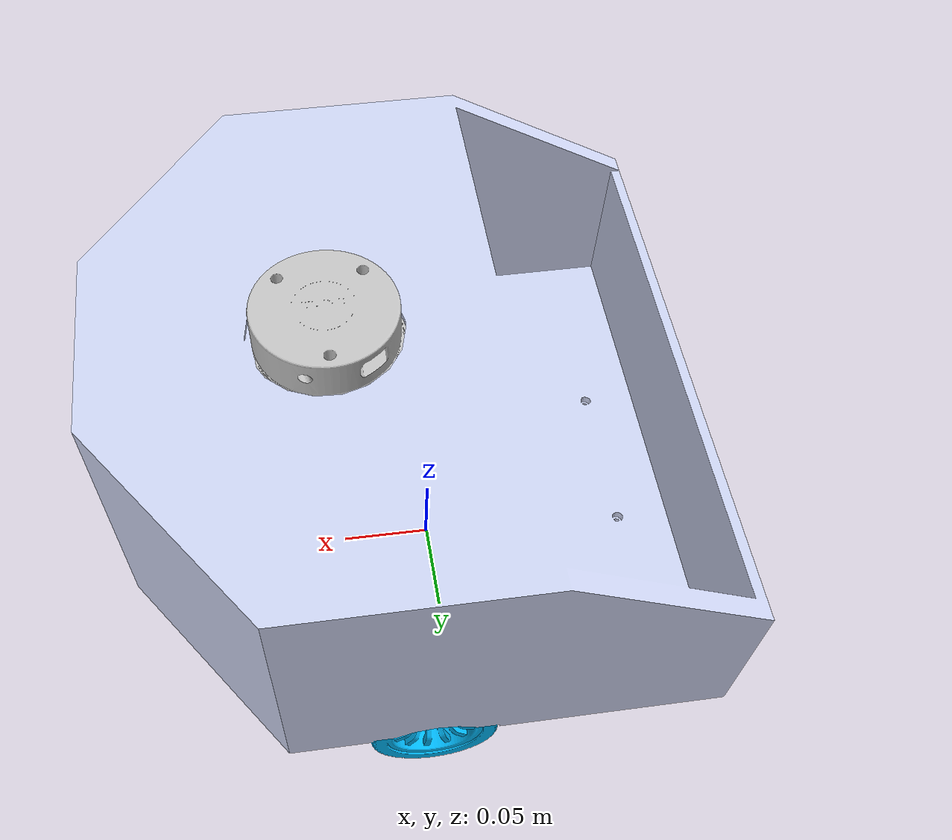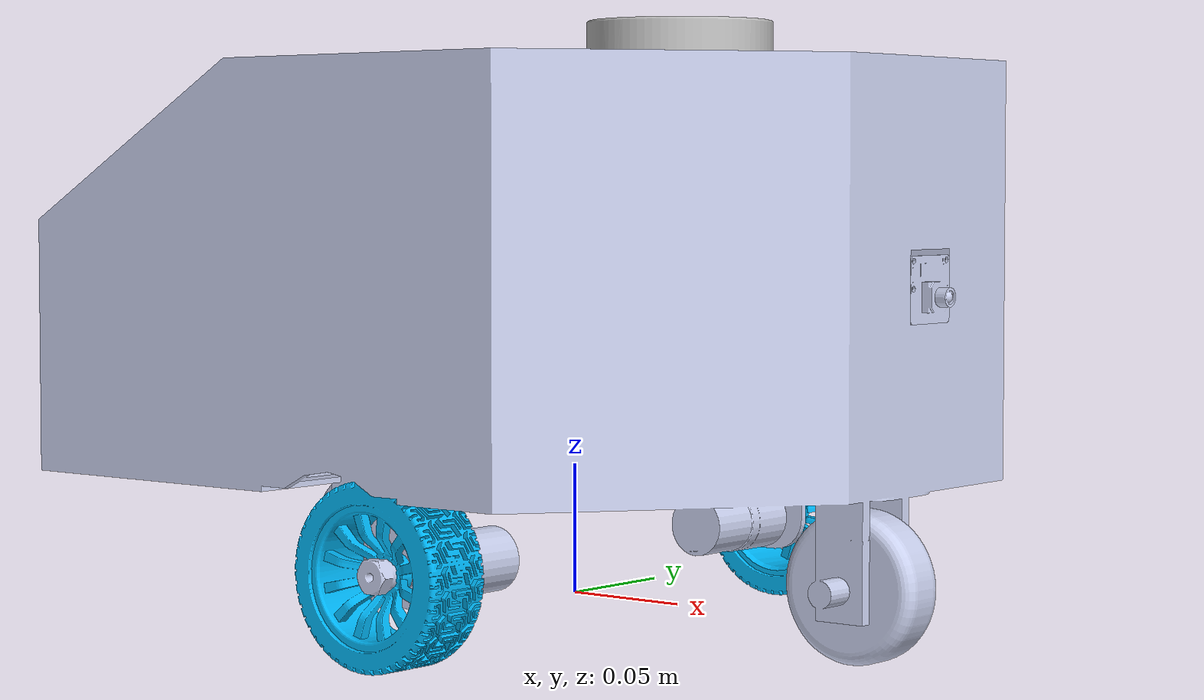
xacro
<?xml version="1.0" encoding="utf-8"?>
<robot xmlns:xacro="http://ros.org/wiki/xacro">
  <link
    name="base_link">
    <inertial>
      <origin
        xyz="-0.020323640474839 -0.00503417361392195 0.055304484686837"
        rpy="0 0 0" />
      <mass
        value="1.72426257072843" />
      <inertia
        ixx="0.0201147961188581"
        ixy="4.24552853817101E-05"
        ixz="-0.00247781037487344"
        iyy="0.014189694142188"
        iyz="1.13869699220195E-05"
        izz="0.0268274687148955" />
    </inertial>
    <visual>
      <origin
        xyz="0 0 0"
        rpy="0 0 0" />
      <geometry>
        <mesh
          filename="package://robot_description/meshes/base_link.STL" />
      </geometry>
      <material
        name="">
        <color
          rgba="0.792156862745098 0.819607843137255 0.933333333333333 1" />
      </material>
    </visual>
    <collision>
      <origin
        xyz="0 0 0"
        rpy="0 0 0" />
      <geometry>
        <mesh
          filename="package://robot_description/meshes/base_link.STL" />
      </geometry>
    </collision>
  </link>

  <link name="base_footprint"></link>
  <joint name="base_joint" type="fixed">
    <parent link="base_footprint"/>
    <child link="base_link" />
    <origin xyz="0 0 0.05155" rpy="0 0 0"/>
  </joint>

  <link
    name="WL_Link">
    <inertial>
      <origin
        xyz="-3.89171393028187E-10 -0.013931690521404 1.86314953048994E-10"
        rpy="0 0 0" />
      <mass
        value="0.0333822790515451" />
      <inertia
        ixx="1.51686308540204E-05"
        ixy="9.58150429074449E-17"
        ixz="-1.67624352726415E-13"
        iyy="2.57516582391557E-05"
        iyz="-2.86237051388777E-15"
        izz="1.5168630582853E-05" />
    </inertial>
    <visual>
      <origin
        xyz="0 0 0"
        rpy="0 0 0" />
      <geometry>
        <mesh
          filename="package://robot_description/meshes/WL_Link.STL" />
      </geometry>
      <material
        name="">
        <color
          rgba="0 0.717647058823529 0.968627450980392 1" />
      </material>
    </visual>
    <collision>
      <origin
        xyz="0 0 0"
        rpy="0 0 0" />
      <geometry>
        <mesh
          filename="package://robot_description/meshes/WL_Link.STL" />
      </geometry>
    </collision>
  </link>
  <joint
    name="WL"
    type="continuous">
    <origin
      xyz="0.015798 -0.10986 -0.03"
      rpy="0 0 0" />
    <parent
      link="base_link" />
    <child
      link="WL_Link" />
    <axis
      xyz="0 1 0" />
  </joint>
  <link
    name="WR_Link">
    <inertial>
      <origin
        xyz="1.41898146011066E-10 0.0139316905214036 -4.07469818303197E-10"
        rpy="0 0 0" />
      <mass
        value="0.0333822790515455" />
      <inertia
        ixx="1.51686305491668E-05"
        ixy="2.83393695898371E-15"
        ixz="-1.33523495785501E-13"
        iyy="2.57516582391559E-05"
        iyz="-4.13340954267257E-16"
        izz="1.51686308877069E-05" />
    </inertial>
    <visual>
      <origin
        xyz="0 0 0"
        rpy="0 0 0" />
      <geometry>
        <mesh
          filename="package://robot_description/meshes/WR_Link.STL" />
      </geometry>
      <material
        name="">
        <color
          rgba="0 0.717647058823529 0.968627450980392 1" />
      </material>
    </visual>
    <collision>
      <origin
        xyz="0 0 0"
        rpy="0 0 0" />
      <geometry>
        <mesh
          filename="package://robot_description/meshes/WR_Link.STL" />
      </geometry>
    </collision>
  </link>
  <joint
    name="WR"
    type="continuous">
    <origin
      xyz="0.015798 0.10986 -0.03"
      rpy="0 0 0" />
    <parent
      link="base_link" />
    <child
      link="WR_Link" />
    <axis
      xyz="0 1 0" />
  </joint>
  <link
    name="SF_Link">
    <inertial>
      <origin
        xyz="-0.00109034149189896 0.00021801111856061 0.000402219794071071"
        rpy="0 0 0" />
      <mass
        value="0.0452273710021345" />
      <inertia
        ixx="1.01682869627524E-05"
        ixy="-2.36291185766769E-11"
        ixz="-5.31435802143934E-20"
        iyy="1.01682729665126E-05"
        iyz="-1.00868790747467E-21"
        izz="1.74874180521558E-05" />
    </inertial>
    <visual>
      <origin
        xyz="0 0 0"
        rpy="0 0 0" />
      <geometry>
        <mesh
          filename="package://robot_description/meshes/SF_Link.STL" />
      </geometry>
      <material
        name="">
        <color
          rgba="0.792156862745098 0.819607843137255 0.933333333333333 1" />
      </material>
    </visual>
    <collision>
      <origin
        xyz="0 0 0"
        rpy="0 0 0" />
      <geometry>
        <mesh
          filename="package://robot_description/meshes/SF_Link.STL" />
      </geometry>
    </collision>
  </link>
  <joint
    name="SF"
    type="fixed">
    <origin
      xyz="0.13766 -0.0050587 -0.036634"
      rpy="1.5708 0 0" />
    <parent
      link="base_link" />
    <child
      link="SF_Link" />
    <axis
      xyz="0 0 1" />
  </joint>
  <link
    name="SB_Link">
    <inertial>
      <origin
        xyz="-0.000802433467456828 4.71434097780443E-07 5.98745066350782E-05"
        rpy="0 0 0" />
      <mass
        value="0.0418627718069573" />
      <inertia
        ixx="8.84835409421031E-06"
        ixy="-2.38448429704364E-11"
        ixz="2.57290383529941E-22"
        iyy="8.84834113064509E-06"
        iyz="1.00437728269628E-21"
        izz="1.50655958892102E-05" />
    </inertial>
    <visual>
      <origin
        xyz="0 0 0"
        rpy="0 0 0" />
      <geometry>
        <mesh
          filename="package://robot_description/meshes/SB_Link.STL" />
      </geometry>
      <material
        name="">
        <color
          rgba="0.792156862745098 0.819607843137255 0.933333333333333 1" />
      </material>
    </visual>
    <collision>
      <origin
        xyz="0 0 0"
        rpy="0 0 0" />
      <geometry>
        <mesh
          filename="package://robot_description/meshes/SB_Link.STL" />
      </geometry>
    </collision>
  </link>
  <joint
    name="SB"
    type="fixed">
    <origin
      xyz="-0.10234 -0.0050587 -0.036634"
      rpy="1.5708 0 0" />
    <parent
      link="base_link" />
    <child
      link="SB_Link" />
    <axis
      xyz="0 0 1" />
  </joint>
  <link
    name="Camera_Link">
    <inertial>
      <origin
        xyz="-0.00770923724752959 -2.63339267868729E-05 0.000162555472316084"
        rpy="0 0 0" />
      <mass
        value="0.00154848047913568" />
      <inertia
        ixx="9.81432463144103E-08"
        ixy="-1.55039476124509E-11"
        ixz="-2.74782275446747E-09"
        iyy="6.1527176704902E-08"
        iyz="3.76746360401982E-10"
        izz="5.63298191001056E-08" />
    </inertial>
    <visual>
      <origin
        xyz="0 0 0"
        rpy="0 0 0" />
      <geometry>
        <mesh
          filename="package://robot_description/meshes/Camera_Link.STL" />
      </geometry>
      <material
        name="">
        <color
          rgba="0.792156862745098 0.819607843137255 0.933333333333333 1" />
      </material>
    </visual>
    <collision>
      <origin
        xyz="0 0 0"
        rpy="0 0 0" />
      <geometry>
        <mesh
          filename="package://robot_description/meshes/Camera_Link.STL" />
      </geometry>
    </collision>
  </link>
  <joint
    name="Camera"
    type="fixed">
    <origin
      xyz="0.1752 -0.0080928 0.068362"
      rpy="0 0 0" />
    <parent
      link="base_link" />
    <child
      link="Camera_Link" />
    <axis
      xyz="0 1 0" />
    <limit
      lower="0"
      upper="0"
      effort="0"
      velocity="0" />
  </joint>
  <link
    name="IMU_Link">
    <inertial>
      <origin
        xyz="-3.46944695195361E-18 -1.73472347597681E-18 -0.001"
        rpy="0 0 0" />
      <mass
        value="0.0018" />
      <inertia
        ixx="1.356E-07"
        ixy="-1.19114008207636E-23"
        ixz="8.27180612553027E-25"
        iyy="1.356E-07"
        iyz="9.37471360893431E-25"
        izz="2.7E-07" />
    </inertial>
    <visual>
      <origin
        xyz="0 0 0"
        rpy="0 0 0" />
      <geometry>
        <mesh
          filename="package://robot_description/meshes/IMU_Link.STL" />
      </geometry>
      <material
        name="">
        <color
          rgba="0.792156862745098 0.819607843137255 0.933333333333333 1" />
      </material>
    </visual>
    <collision>
      <origin
        xyz="0 0 0"
        rpy="0 0 0" />
      <geometry>
        <mesh
          filename="package://robot_description/meshes/IMU_Link.STL" />
      </geometry>
    </collision>
  </link>
  <joint
    name="IMU"
    type="fixed">
    <origin
      xyz="0.017676 -0.0017088 0.004"
      rpy="0 0 0" />
    <parent
      link="base_link" />
    <child
      link="IMU_Link" />
    <axis
      xyz="0 0 0" />
  </joint>
  <link
    name="LD_Link">
    <inertial>
      <origin
        xyz="0.0114402130757858 0.000415357263239477 -0.0178701471511215"
        rpy="0 0 0" />
      <mass
        value="0.182791105483388" />
      <inertia
        ixx="6.58360857226434E-05"
        ixy="-7.10040945410764E-07"
        ixz="-1.85235171090658E-06"
        iyy="0.000121531815048432"
        iyz="-1.85259062821839E-07"
        izz="0.000170790314009463" />
    </inertial>
    <visual>
      <origin
        xyz="0 0 0"
        rpy="0 0 0" />
      <geometry>
        <mesh
          filename="package://robot_description/meshes/LD_Link.STL" />
      </geometry>
      <material
        name="">
        <color
          rgba="0.752941176470588 0.752941176470588 0.752941176470588 1" />
      </material>
    </visual>
    <collision>
      <origin
        xyz="0 0 0"
        rpy="0 0 0" />
      <geometry>
        <mesh
          filename="package://robot_description/meshes/LD_Link.STL" />
      </geometry>
    </collision>
  </link>
  <joint
    name="LD"
    type="fixed">
    <origin
      xyz="0.051396 -0.0008474 0.1594"
      rpy="0 0 3.1416" />
    <parent
      link="base_link" />
    <child
      link="LD_Link" />
    <axis
      xyz="0 0 1" />
  </joint>
</robot>
